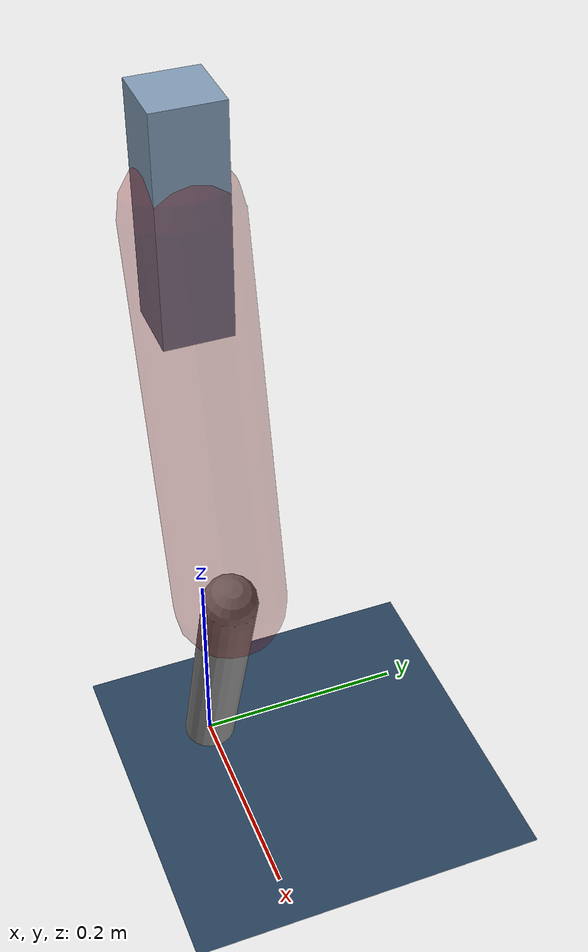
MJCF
<mujoco model="Hopper2D">
	<compiler inertiafromgeom="true" angle="radian" />
	<option timestep="0.001" integrator="implicit" cone="elliptic" solver="Newton" tolerance="1e-10" />

	<default>
		<geom contype="1" conaffinity="1" condim="3" friction="2 0.005 0.0001" solref="0.005 1" />
		<joint limited="true" damping="0.1" />
	</default>

	<asset>
		<texture name="skybox" type="skybox" builtin="gradient" rgb1=".4 .6 .8" rgb2="0 0 0" width="800" height="800" />
		<texture name="grid" type="2d" builtin="checker" rgb1=".1 .2 .3" rgb2=".2 .3 .4" width="300" height="300" mark="edge" markrgb=".2 .3 .4" />
		<material name="ground" texture="grid" texrepeat="1 1" texuniform="true" reflectance="0.1" />
		<material name="leg" rgba="0.5 0.6 0.7 1" />
	</asset>

	<worldbody>

		<geom name="floor" type="plane" size="5 5 0.25" material="ground" />

		<light directional="false" diffuse="0.8 0.8 0.8" specular="0.3 0.3 0.3" pos="0 0 2" dir="0 0 -1" />
		<light mode="targetbodycom" target="base" directional="false" diffuse="0.8 0.8 0.8" specular="0.3 0.3 0.3" pos="0 0 2" dir="0 0 -1" />

		<camera name="fixed" pos="0 -2 1" xyaxes="1 0 0 0 0 1" />
		<camera name="tracking" mode="trackcom" pos="0 -3 1" />

		<body name="root" pos="0 0 0.5999895919128186">
			<joint name="slide_x" type="slide" axis="1 0 0" range="-100 100" />
			<joint name="slide_z" type="slide" axis="0 0 1" range="0 10" />

			<body name="base" pos="0 0 0">
				<geom name="torso" type="box" size="0.03 0.03 0.1" mass="2.868" material="leg" />

				<body name="link1" pos="0 0 0" euler="0 1.3312463327144874 0">
					<joint type="hinge" axis="0 -1 0" pos="0 0 0" name="hinge1" limited="true" range="-3.14 3.14" stiffness="0" damping="0.1" />
					<geom name="thigh" type="capsule" fromto="0 0 0 0.3492819035956308 0 0" size="0.05" rgba="0.5 0 0 0.3" mass="1.1246893300677663" />

					<body name="link2" pos="0.3492819035956308 0 0" euler="0 0.5473534593998098 0">
						<joint type="hinge" axis="0 -1 0" pos="0 0 0" name="hinge2" limited="true" range="-3.14 3.14" stiffness="0" damping="0.1" />
						<geom name="shank" type="capsule" fromto="0 0 0 0.27353737664673794 0 0" size="0.025" mass="0.4618299013173903" />

					</body>
				</body>
			</body>
		</body>
	</worldbody>

	<actuator>
		<motor name="torque1" joint="hinge1" ctrlrange="-109.44651673694726 109.44651673694726" ctrllimited="true" gear="1" />
		<motor name="torque2" joint="hinge2" ctrlrange="-23.82937250422673 23.82937250422673" ctrllimited="true" gear="1" />
	</actuator>
</mujoco>
